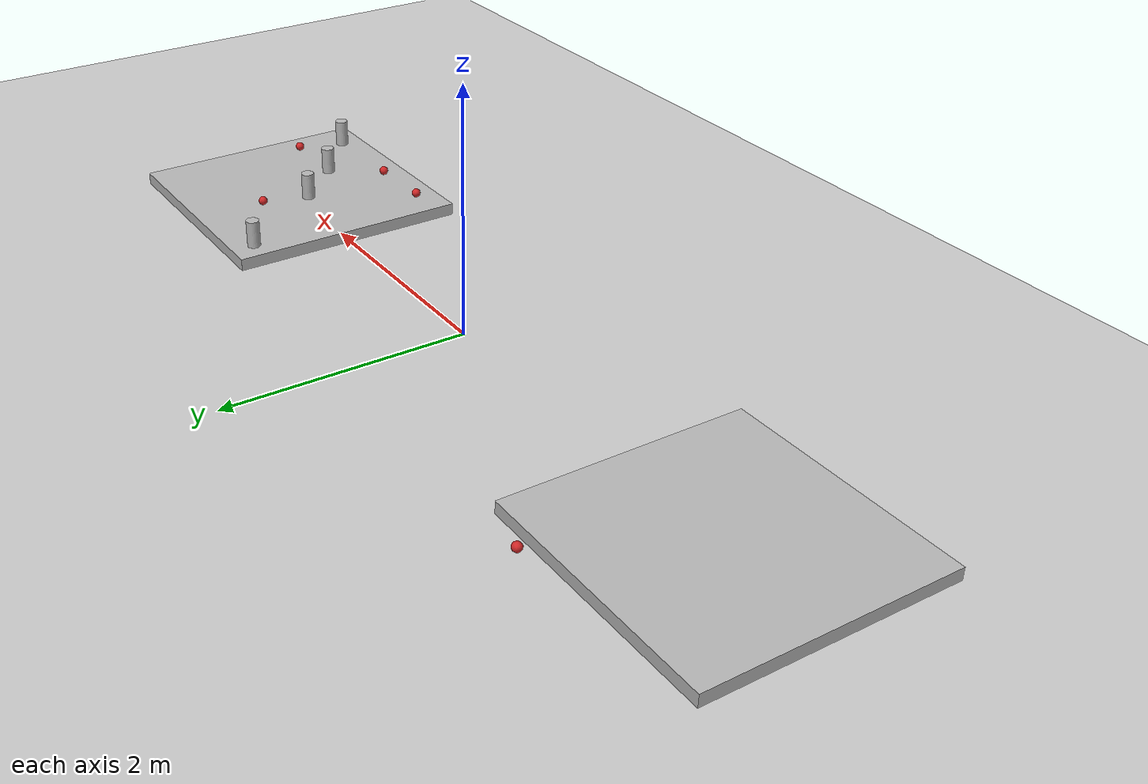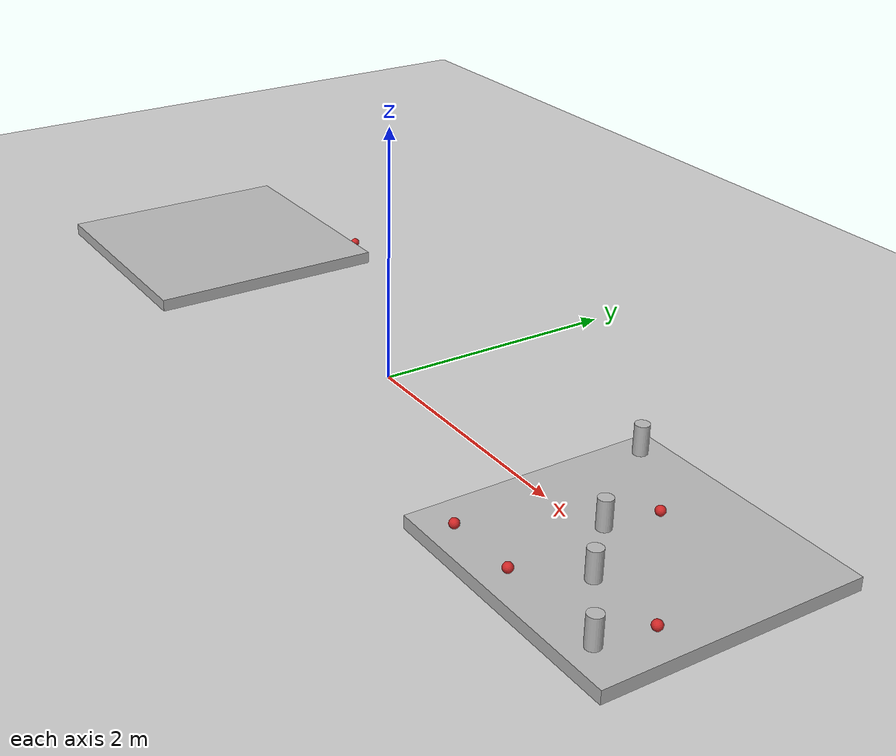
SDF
<sdf version="1.4">
 <world name="default">
  <include><uri>model://sun</uri></include>
  <include><uri>model://ground_plane</uri></include>
  <scene>
   <ambient>0.4 0.4 0.4 1</ambient>
   <background>0.25 0.25 0.25 1</background>
   <shadows>false</shadows>
  </scene>
  <light type="directional" name="some_light">
   <diffuse>0.7 0.7 0.7 0</diffuse>
   <specular>1 1 1 0</specular>
   <direction>-1 -1 -1</direction>
  </light>
  <light name="sun" type="directional">
   <pose>0 0 10 0 -0 0</pose>
   <diffuse>0.8 0.8 0.8 1</diffuse>
   <specular>0.2 0.2 0.2 1</specular>
   <attenuation>
    <range>1000</range>
    <constant>0.9</constant>
    <linear>0.01</linear>
    <quadratic>0.001</quadratic>
   </attenuation>
   <direction>-0.5 0.1 -0.9</direction>
  </light>
  <gravity>0 0 -9.8</gravity>
  <magnetic_field>6e-06 2.3e-05 -4.2e-05</magnetic_field>
  <atmosphere type="adiabatic"/>
  <physics name="default_physics" default="0" type="ode">
   <max_step_size>0.001</max_step_size>
   <real_time_factor>1</real_time_factor>
   <real_time_update_rate>1000</real_time_update_rate>
  </physics>
  <scene><ambient>0.4 0.4 0.4 1</ambient><background>0.7 0.7 0.7 1</background><shadows>1</shadows></scene>
  <audio><device>default</device></audio>
  <spherical_coordinates>
   <surface_model>EARTH_WGS84</surface_model>
   <latitude_deg>0</latitude_deg>
   <longitude_deg>0</longitude_deg>
   <elevation>0</elevation>
   <heading_deg>0</heading_deg>
  </spherical_coordinates>
  <model name="Big box 4">
   <pose>-2.99909 -2e-06 0.049492 0 0.000492 -3.8e-05</pose>
   <static>0</static>
   <link name="link">
    <inertial>
     <mass>40</mass>
     <inertia><ixx>1</ixx><ixy>0</ixy><ixz>0</ixz><iyy>1</iyy><iyz>0</iyz><izz>1</izz></inertia>
    </inertial>
    <collision name="collision">
     <geometry><box><size>2 2 0.1</size></box></geometry>
     <surface><contact><ode><max_vel>0.1</max_vel><min_depth>0.001</min_depth></ode></contact></surface>
    </collision>
    <visual name="visual"><geometry><box><size>2 2 0.1</size></box></geometry></visual>
   </link>
  </model>
  <model name="Big box 4_clone">
   <pose>2.82123 -2.5e-05 0.0495 1e-06 0.000495 0.002506</pose>
   <static>0</static>
   <link name="link">
    <inertial>
     <mass>40</mass>
     <inertia><ixx>1</ixx><ixy>0</ixy><ixz>0</ixz><iyy>1</iyy><iyz>0</iyz><izz>1</izz></inertia>
    </inertial>
    <collision name="collision">
     <geometry><box><size>2 2 0.1</size></box></geometry>
     <surface><contact><ode><max_vel>0.1</max_vel><min_depth>0.001</min_depth></ode></contact></surface>
    </collision>
    <visual name="visual"><geometry><box><size>2 2 0.1</size></box></geometry></visual>
   </link>
  </model>
  <model name="cricket_ball">
   <link name="link">
    <pose>0 0 0.0375 0 -0 0</pose>
    <inertial>
     <mass>0.1467</mass>
     <inertia>
      <ixx>8.25187e-05</ixx>
      <ixy>0</ixy>
      <ixz>0</ixz>
      <iyy>8.25187e-05</iyy>
      <iyz>0</iyz>
      <izz>8.25187e-05</izz>
     </inertia>
    </inertial>
    <collision name="collision">
     <geometry><sphere><radius>0.0375</radius></sphere></geometry>
     <surface>
      <contact>
       <poissons_ratio>0.347</poissons_ratio>
       <elastic_modulus>8.8e+09</elastic_modulus>
       <ode><kp>100000</kp><kd>100</kd><max_vel>100</max_vel><min_depth>0.001</min_depth></ode>
      </contact>
      <friction>
       <torsional>
        <coefficient>1</coefficient>
        <use_patch_radius>0</use_patch_radius>
        <surface_radius>0.01</surface_radius>
       </torsional>
      </friction>
     </surface>
    </collision>
    <visual name="visual">
     <geometry><sphere><radius>0.0375</radius></sphere></geometry>
     <material>
      <script><uri>file://media/materials/scripts/gazebo.material</uri><name>Gazebo/Red</name></script>
     </material>
    </visual>
    <velocity_decay><linear>0</linear><angular>0.005</angular></velocity_decay>
   </link>
   <pose>-2.3901 1.05184 0.03076 -1.41752 5.5e-05 6.4e-05</pose>
  </model>
  <model name="cricket_ball_0">
   <link name="link">
    <pose>0 0 0.0375 0 -0 0</pose>
    <inertial>
     <mass>0.1467</mass>
     <inertia>
      <ixx>8.25187e-05</ixx>
      <ixy>0</ixy>
      <ixz>0</ixz>
      <iyy>8.25187e-05</iyy>
      <iyz>0</iyz>
      <izz>8.25187e-05</izz>
     </inertia>
    </inertial>
    <collision name="collision">
     <geometry><sphere><radius>0.0375</radius></sphere></geometry>
     <surface>
      <contact>
       <poissons_ratio>0.347</poissons_ratio>
       <elastic_modulus>8.8e+09</elastic_modulus>
       <ode><kp>100000</kp><kd>100</kd><max_vel>100</max_vel><min_depth>0.001</min_depth></ode>
      </contact>
      <friction>
       <torsional>
        <coefficient>1</coefficient>
        <use_patch_radius>0</use_patch_radius>
        <surface_radius>0.01</surface_radius>
       </torsional>
      </friction>
     </surface>
    </collision>
    <visual name="visual">
     <geometry><sphere><radius>0.0375</radius></sphere></geometry>
     <material>
      <script><uri>file://media/materials/scripts/gazebo.material</uri><name>Gazebo/Red</name></script>
     </material>
    </visual>
    <velocity_decay><linear>0</linear><angular>0.005</angular></velocity_decay>
   </link>
   <pose>2.07712 -0.805813 0.148728 -2.89451 1.22304 -2.91053</pose>
  </model>
  <model name="cricket_ball_0_clone">
   <link name="link">
    <pose>0 0 0.0375 0 -0 0</pose>
    <inertial>
     <mass>0.1467</mass>
     <inertia>
      <ixx>8.25187e-05</ixx>
      <ixy>0</ixy>
      <ixz>0</ixz>
      <iyy>8.25187e-05</iyy>
      <iyz>0</iyz>
      <izz>8.25187e-05</izz>
     </inertia>
    </inertial>
    <collision name="collision">
     <geometry><sphere><radius>0.0375</radius></sphere></geometry>
     <surface>
      <contact>
       <poissons_ratio>0.347</poissons_ratio>
       <elastic_modulus>8.8e+09</elastic_modulus>
       <ode><kp>100000</kp><kd>100</kd><max_vel>100</max_vel><min_depth>0.001</min_depth></ode>
      </contact>
      <friction>
       <torsional>
        <coefficient>1</coefficient>
        <use_patch_radius>0</use_patch_radius>
        <surface_radius>0.01</surface_radius>
       </torsional>
      </friction>
     </surface>
    </collision>
    <visual name="visual">
     <geometry><sphere><radius>0.0375</radius></sphere></geometry>
     <material>
      <script><uri>file://media/materials/scripts/gazebo.material</uri><name>Gazebo/Red</name></script>
     </material>
    </visual>
    <velocity_decay><linear>0</linear><angular>0.005</angular></velocity_decay>
   </link>
   <pose>2.65795 -0.793717 0.167338 -2.97317 0.562068 -2.97596</pose>
  </model>
  <model name="cricket_ball_0_clone_clone">
   <link name="link">
    <pose>0 0 0.0375 0 -0 0</pose>
    <inertial>
     <mass>0.1467</mass>
     <inertia>
      <ixx>8.25187e-05</ixx>
      <ixy>0</ixy>
      <ixz>0</ixz>
      <iyy>8.25187e-05</iyy>
      <iyz>0</iyz>
      <izz>8.25187e-05</izz>
     </inertia>
    </inertial>
    <collision name="collision">
     <geometry><sphere><radius>0.0375</radius></sphere></geometry>
     <surface>
      <contact>
       <poissons_ratio>0.347</poissons_ratio>
       <elastic_modulus>8.8e+09</elastic_modulus>
       <ode><kp>100000</kp><kd>100</kd><max_vel>100</max_vel><min_depth>0.001</min_depth></ode>
      </contact>
      <friction>
       <torsional>
        <coefficient>1</coefficient>
        <use_patch_radius>0</use_patch_radius>
        <surface_radius>0.01</surface_radius>
       </torsional>
      </friction>
     </surface>
    </collision>
    <visual name="visual">
     <geometry><sphere><radius>0.0375</radius></sphere></geometry>
     <material>
      <script><uri>file://media/materials/scripts/gazebo.material</uri><name>Gazebo/Red</name></script>
     </material>
    </visual>
    <velocity_decay><linear>0</linear><angular>0.005</angular></velocity_decay>
   </link>
   <pose>2.65452 0.404134 0.167552 -2.96355 0.54846 -2.95704</pose>
  </model>
  <model name="cricket_ball_0_clone_clone_0">
   <link name="link">
    <pose>0 0 0.0375 0 -0 0</pose>
    <inertial>
     <mass>0.1467</mass>
     <inertia>
      <ixx>8.25187e-05</ixx>
      <ixy>0</ixy>
      <ixz>0</ixz>
      <iyy>8.25187e-05</iyy>
      <iyz>0</iyz>
      <izz>8.25187e-05</izz>
     </inertia>
    </inertial>
    <collision name="collision">
     <geometry><sphere><radius>0.0375</radius></sphere></geometry>
     <surface>
      <contact>
       <poissons_ratio>0.347</poissons_ratio>
       <elastic_modulus>8.8e+09</elastic_modulus>
       <ode><kp>100000</kp><kd>100</kd><max_vel>100</max_vel><min_depth>0.001</min_depth></ode>
      </contact>
      <friction>
       <torsional>
        <coefficient>1</coefficient>
        <use_patch_radius>0</use_patch_radius>
        <surface_radius>0.01</surface_radius>
       </torsional>
      </friction>
     </surface>
    </collision>
    <visual name="visual">
     <geometry><sphere><radius>0.0375</radius></sphere></geometry>
     <material>
      <script><uri>file://media/materials/scripts/gazebo.material</uri><name>Gazebo/Red</name></script>
     </material>
    </visual>
    <velocity_decay><linear>0</linear><angular>0.005</angular></velocity_decay>
   </link>
   <pose>3.55524 -0.395107 0.166482 -2.97343 0.582684 -2.97938</pose>
  </model>
  <model name="beer">
   <link name="link">
    <pose>0 0 0.115 0 -0 0</pose>
    <inertial>
     <mass>0.39</mass>
     <inertia><ixx>0.00058</ixx><ixy>0</ixy><ixz>0</ixz><iyy>0.00058</iyy><iyz>0</iyz><izz>0.00019</izz></inertia>
    </inertial>
    <collision name="collision">
     <geometry><cylinder><radius>0.055</radius><length>0.23</length></cylinder></geometry>
    </collision>
    <visual name="visual">
     <geometry><cylinder><radius>0.055</radius><length>0.23</length></cylinder></geometry>
     <material>
      <script>
       <uri>model://beer/materials/scripts</uri>
       <uri>model://beer/materials/textures</uri>
       <name>Beer/Diffuse</name>
      </script>
     </material>
    </visual>
   </link>
   <pose>3.50224 -0.800392 0.099163 2.9e-05 0.00049 0.002443</pose>
  </model>
  <model name="beer_clone">
   <link name="link">
    <pose>0 0 0.115 0 -0 0</pose>
    <inertial>
     <mass>0.39</mass>
     <inertia><ixx>0.00058</ixx><ixy>0</ixy><ixz>0</ixz><iyy>0.00058</iyy><iyz>0</iyz><izz>0.00019</izz></inertia>
    </inertial>
    <collision name="collision">
     <geometry><cylinder><radius>0.055</radius><length>0.23</length></cylinder></geometry>
    </collision>
    <visual name="visual">
     <geometry><cylinder><radius>0.055</radius><length>0.23</length></cylinder></geometry>
     <material>
      <script>
       <uri>model://beer/materials/scripts</uri>
       <uri>model://beer/materials/textures</uri>
       <name>Beer/Diffuse</name>
      </script>
     </material>
    </visual>
   </link>
   <pose>2.60111 -5.3e-05 0.099608 2e-05 0.000497 0.008108</pose>
  </model>
  <model name="beer_clone_0">
   <link name="link">
    <pose>0 0 0.115 0 -0 0</pose>
    <inertial>
     <mass>0.39</mass>
     <inertia><ixx>0.00058</ixx><ixy>0</ixy><ixz>0</ixz><iyy>0.00058</iyy><iyz>0</iyz><izz>0.00019</izz></inertia>
    </inertial>
    <collision name="collision">
     <geometry><cylinder><radius>0.055</radius><length>0.23</length></cylinder></geometry>
    </collision>
    <visual name="visual">
     <geometry><cylinder><radius>0.055</radius><length>0.23</length></cylinder></geometry>
     <material>
      <script>
       <uri>model://beer/materials/scripts</uri>
       <uri>model://beer/materials/textures</uri>
       <name>Beer/Diffuse</name>
      </script>
     </material>
    </visual>
   </link>
   <pose>2.00024 0.799987 0.099907 2.9e-05 0.000509 0.021697</pose>
  </model>
  <model name="beer_clone_1">
   <link name="link">
    <pose>0 0 0.115 0 -0 0</pose>
    <inertial>
     <mass>0.39</mass>
     <inertia><ixx>0.00058</ixx><ixy>0</ixy><ixz>0</ixz><iyy>0.00058</iyy><iyz>0</iyz><izz>0.00019</izz></inertia>
    </inertial>
    <collision name="collision">
     <geometry><cylinder><radius>0.055</radius><length>0.23</length></cylinder></geometry>
    </collision>
    <visual name="visual">
     <geometry><cylinder><radius>0.055</radius><length>0.23</length></cylinder></geometry>
     <material>
      <script>
       <uri>model://beer/materials/scripts</uri>
       <uri>model://beer/materials/textures</uri>
       <name>Beer/Diffuse</name>
      </script>
     </material>
    </visual>
   </link>
   <pose>3.00161 -0.400212 0.099409 -1.4e-05 0.000491 0.004082</pose>
  </model>
 </world>
</sdf>
